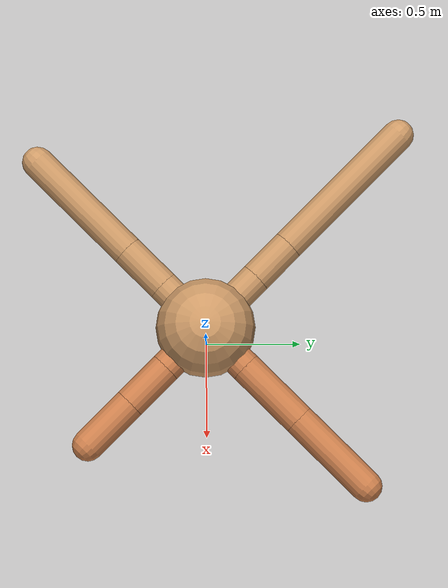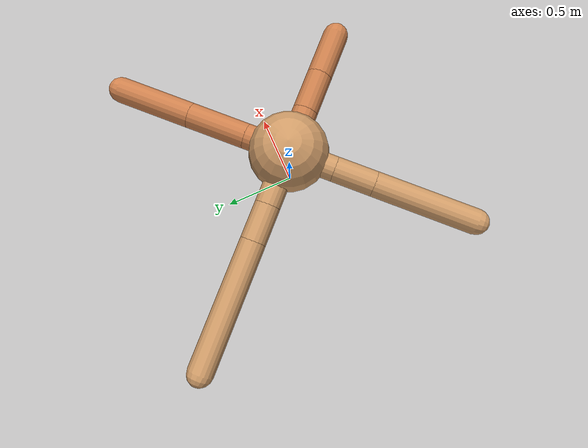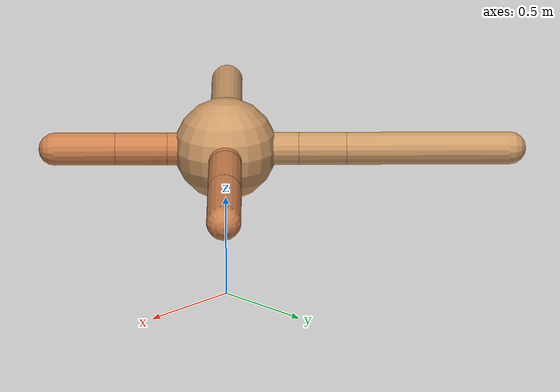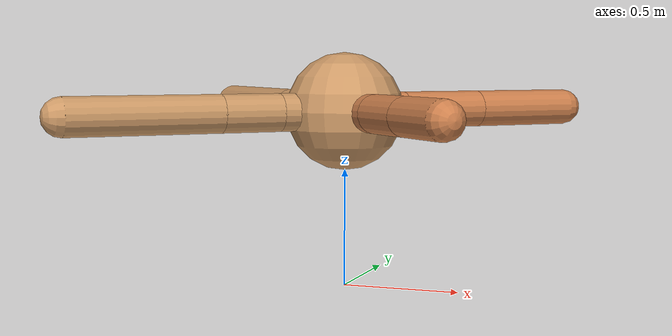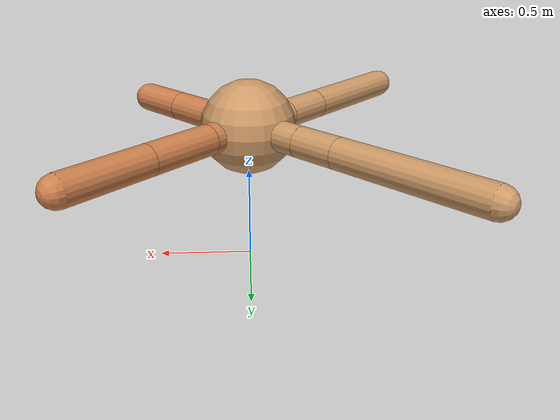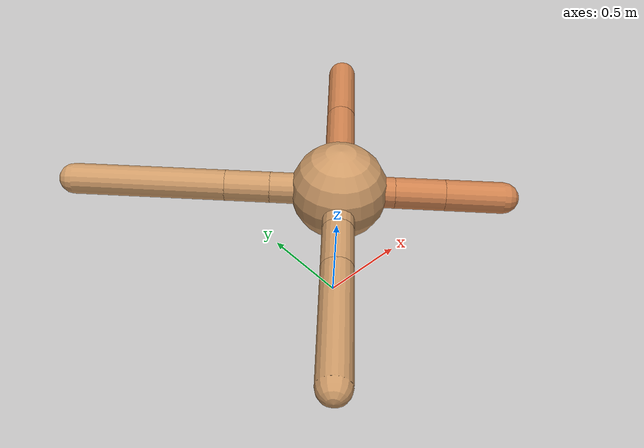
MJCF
<mujoco model="ant">
  <compiler angle="degree" coordinate="local" inertiafromgeom="true" />
  <option integrator="RK4" timestep="0.01" />
  <custom>
    <numeric data="0.0 0.0 0.55 1.0 0.0 0.0 0.0 0.0 1.0 0.0 -1.0 0.0 -1.0 0.0 1.0" name="init_qpos" />
  </custom>
  <default>
    <joint armature="1" damping="1" limited="true" />
    <geom conaffinity="0" condim="3" density="5.0" friction="1.5 0.1 0.1" margin="0.01" rgba="0.8 0.6 0.4 1" />
  </default>
  <worldbody>
    <body name="torso" pos="0 0 0.75">
      <geom name="torso_geom" pos="0 0 0" size="0.25" type="sphere" />

      <body name="front_left_leg" pos="0 0 0">
        <geom fromto="0.0 0.0 0.0 0.2 0.2 0.0" name="aux_1_geom" size="0.08" type="capsule" rgba=".8 .5 .3 1" />
        <body name="aux_1" pos="0.2 0.2 0.0">
          <joint axis="0 0 1" name="hip_1" pos="0.0 0.0 0.0" range="-40 40" type="hinge" />
          <geom fromto="0.0 0.0 0.0 0.26331508844894597 0.26331508844894597 0.0" name="left_leg_geom" size="0.08" type="capsule" rgba=".8 .5 .3 1" />
          <body pos="0.26331508844894597 0.26331508844894597 0.0" name="front_left_foot">
            <joint axis="-1 1 0" name="ankle_1" pos="0.0 0.0 0.0" range="30 100" type="hinge" />
            <geom fromto="0.0 0.0 0.0 0.33130547090197154 0.33130547090197154 0.0" name="left_ankle_geom" size="0.08" type="capsule" rgba=".8 .5 .3 1" />
          </body>
        </body>
      </body>
      <body name="front_right_leg" pos="0 0 0">
        <geom fromto="0.0 0.0 0.0 -0.2513873466807029 0.2513873466807029 0.0" name="aux_2_geom" size="0.08" type="capsule" />
        <body name="aux_2" pos="-0.2513873466807029 0.2513873466807029 0.0">
          <joint axis="0 0 1" name="hip_2" pos="0.0 0.0 0.0" range="-40 40" type="hinge" />
          <geom fromto="0.0 0.0 0.0 -0.16450583904135063 0.16450583904135063 0.0" name="right_leg_geom" size="0.08" type="capsule" />
          <body pos="-0.16450583904135063 0.16450583904135063 0.0" name="front_right_foot">
            <joint axis="1 1 0" name="ankle_2" pos="0.0 0.0 0.0" range="-100 -30" type="hinge" />
            <geom fromto="0.0 0.0 0.0 -0.5620805834005644 0.5620805834005644 0.0" name="right_ankle_geom" size="0.08" type="capsule" />
          </body>
        </body>
      </body>
      <body name="left_back_leg" pos="0 0 0">
        <geom fromto="0.0 0.0 0.0 -0.21155024030153713 -0.21155024030153713 0.0" name="aux_3_geom" size="0.08" type="capsule" />
        <body name="aux_3" pos="-0.21155024030153713 -0.21155024030153713 0.0">
          <joint axis="0 0 1" name="hip_3" pos="0.0 0.0 0.0" range="-40 40" type="hinge" />
          <geom fromto="0.0 0.0 0.0 -0.18000289208206557 -0.18000289208206557 0.0" name="back_leg_geom" size="0.08" type="capsule" />
          <body pos="-0.18000289208206557 -0.18000289208206557 0.0" name="left_back_foot">
            <joint axis="-1 1 0" name="ankle_3" pos="0.0 0.0 0.0" range="-100 -30" type="hinge" />
            <geom fromto="0.0 0.0 0.0 -0.45364244580259516 -0.45364244580259516 0.0" name="third_ankle_geom" size="0.08" type="capsule" />
          </body>
        </body>
      </body>
      <body name="right_back_leg" pos="0 0 0">
        <geom fromto="0.0 0.0 0.0 0.2 -0.2 0.0" name="aux_4_geom" size="0.08" type="capsule" rgba=".8 .5 .3 1" />
        <body name="aux_4" pos="0.2 -0.2 0.0">
          <joint axis="0 0 1" name="hip_4" pos="0.0 0.0 0.0" range="-40 40" type="hinge" />
          <geom fromto="0.0 0.0 0.0 0.17882143899777933 -0.17882143899777933 0.0" name="rightback_leg_geom" size="0.08" type="capsule" rgba=".8 .5 .3 1" />
          <body pos="0.17882143899777933 -0.17882143899777933 0.0" name="right_back_foot">
            <joint axis="1 1 0" name="ankle_4" pos="0.0 0.0 0.0" range="30 100" type="hinge" />
            <geom fromto="0.0 0.0 0.0 0.20777478526123747 -0.20777478526123747 0.0" name="fourth_ankle_geom" size="0.08" type="capsule" rgba=".8 .5 .3 1" />
          </body>
        </body>
      </body>
    </body>
  </worldbody>
  <actuator>
    <motor ctrllimited="true" ctrlrange="-1.0 1.0" joint="hip_4" gear="150" />
    <motor ctrllimited="true" ctrlrange="-1.0 1.0" joint="ankle_4" gear="150" />
    <motor ctrllimited="true" ctrlrange="-1.0 1.0" joint="hip_1" gear="150" />
    <motor ctrllimited="true" ctrlrange="-1.0 1.0" joint="ankle_1" gear="150" />
    <motor ctrllimited="true" ctrlrange="-1.0 1.0" joint="hip_2" gear="150" />
    <motor ctrllimited="true" ctrlrange="-1.0 1.0" joint="ankle_2" gear="150" />
    <motor ctrllimited="true" ctrlrange="-1.0 1.0" joint="hip_3" gear="150" />
    <motor ctrllimited="true" ctrlrange="-1.0 1.0" joint="ankle_3" gear="150" />
  </actuator>
</mujoco>
